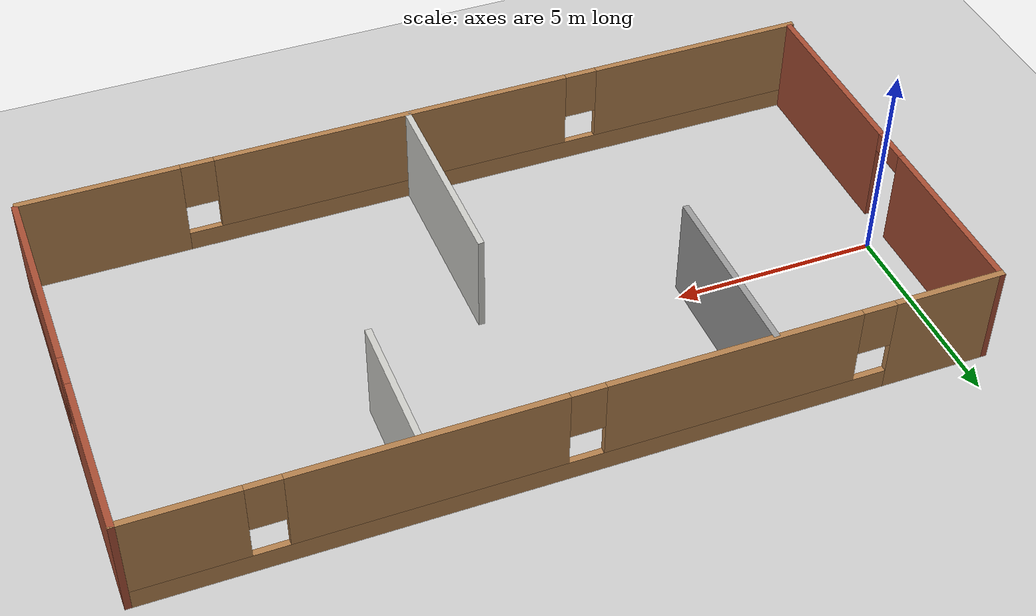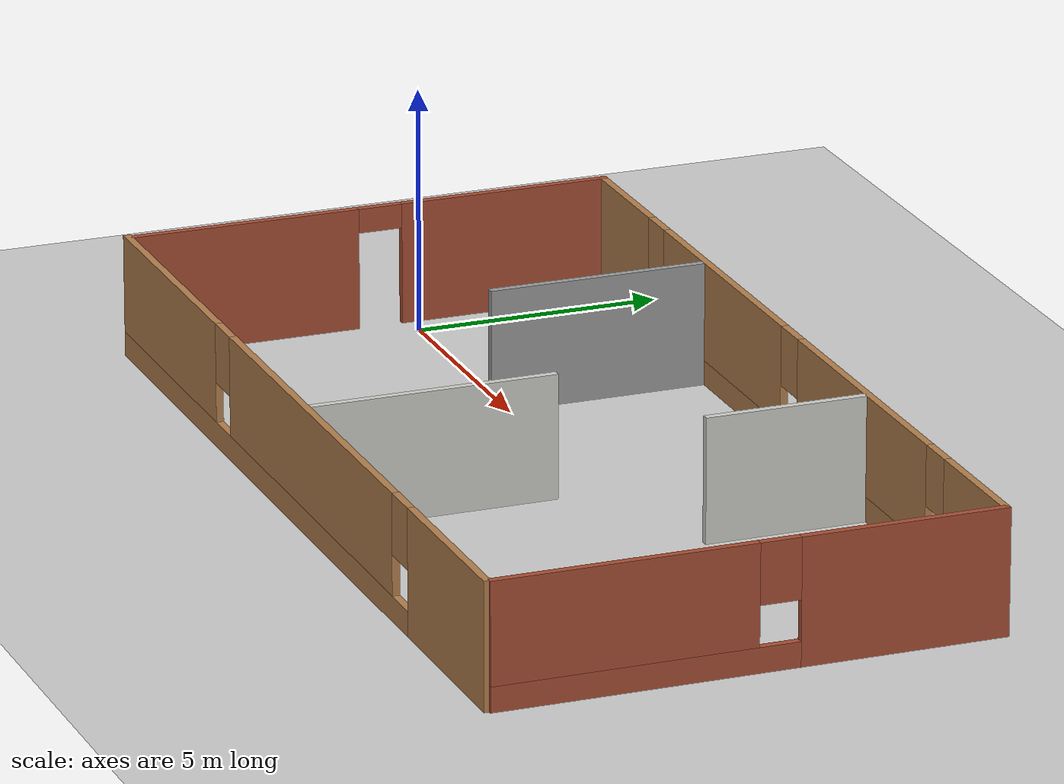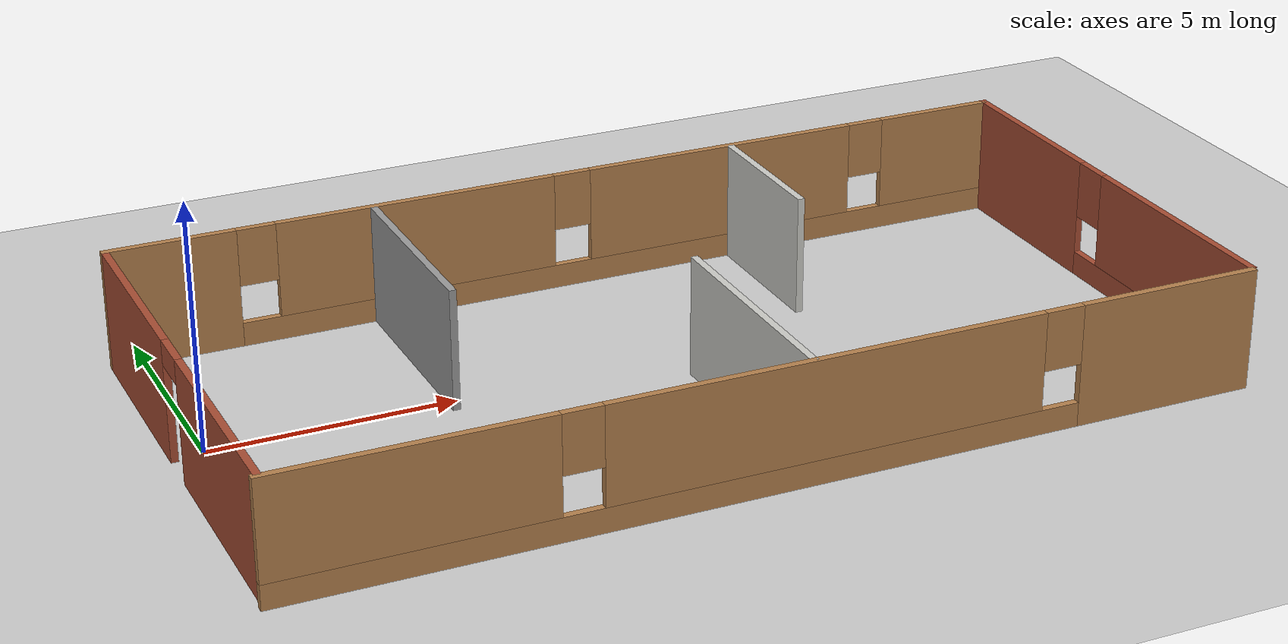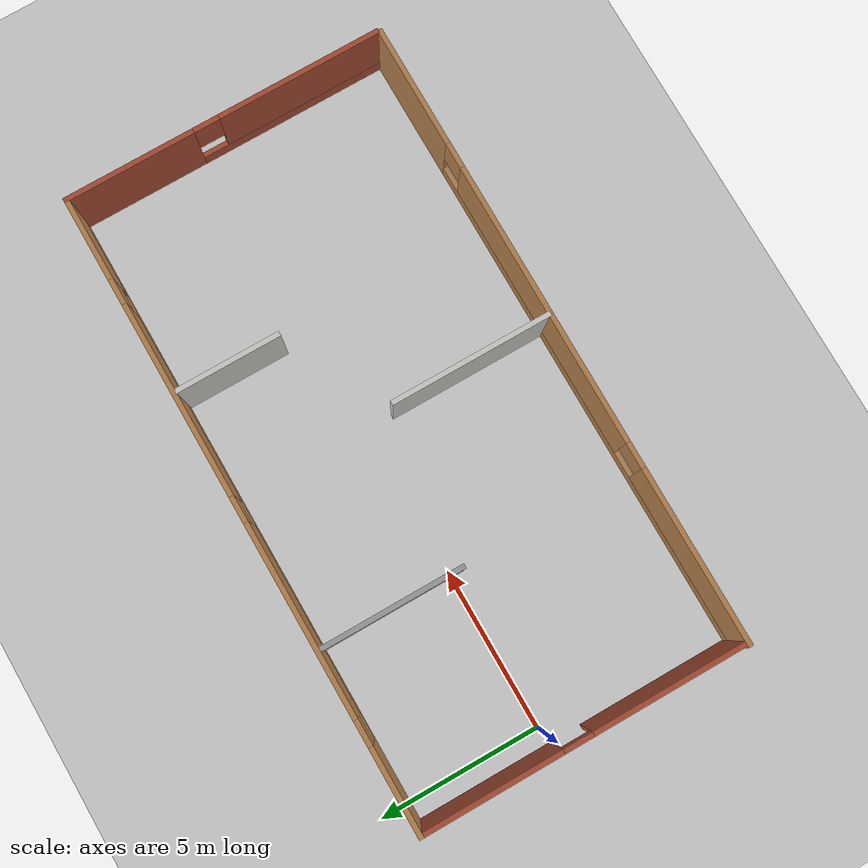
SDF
<sdf version="1.7">
 <world name="default">
  <light name="sun" type="directional">
   <pose>0 0 10 0 -0 0</pose>
   <diffuse>0.8 0.8 0.8 1</diffuse>
   <specular>0.2 0.2 0.2 1</specular>
   <attenuation>
    <range>1000</range>
    <constant>0.9</constant>
    <linear>0.01</linear>
    <quadratic>0.001</quadratic>
   </attenuation>
   <direction>-0.5 0.1 -0.9</direction>
   <spot><inner_angle>0</inner_angle><outer_angle>0</outer_angle><falloff>0</falloff></spot>
  </light>
  <model name="ground_plane">
   <static>1</static>
   <link name="link">
    <collision name="collision">
     <geometry><plane><normal>0 0 1</normal><size>100 100</size></plane></geometry>
     <surface>
      <contact><collide_bitmask>65535</collide_bitmask></contact>
      <friction><ode><mu>100</mu><mu2>50</mu2></ode></friction>
     </surface>
    </collision>
    <visual name="visual">
     <cast_shadows>0</cast_shadows>
     <geometry><plane><normal>0 0 1</normal><size>100 100</size></plane></geometry>
     <material>
      <script><uri>file://media/materials/scripts/gazebo.material</uri><name>Gazebo/Grey</name></script>
     </material>
    </visual>
   </link>
  </model>
  <gravity>0 0 -9.8</gravity>
  <magnetic_field>6e-06 2.3e-05 -4.2e-05</magnetic_field>
  <atmosphere type="adiabatic"/>
  <physics type="ode">
   <max_step_size>0.001</max_step_size>
   <real_time_factor>1</real_time_factor>
   <real_time_update_rate>1000</real_time_update_rate>
  </physics>
  <scene><ambient>0.4 0.4 0.4 1</ambient><background>0.7 0.7 0.7 1</background><shadows>1</shadows></scene>
  <spherical_coordinates>
   <surface_model>EARTH_WGS84</surface_model>
   <latitude_deg>0</latitude_deg>
   <longitude_deg>0</longitude_deg>
   <elevation>0</elevation>
   <heading_deg>0</heading_deg>
  </spherical_coordinates>
  <model name="home_1">
   <pose>9.17812 -0.840731 0 0 -0 0</pose>
   <link name="Wall_17">
    <pose>0.027956 4.97781 0 0 -0 0</pose>
    <visual name="Wall_17_Visual_0">
     <pose>-8.53674 0 1.25 0 -0 0</pose>
     <geometry><box><size>2.67652 0.15 2.5</size></box></geometry>
     <material>
      <script><uri>file://media/materials/scripts/gazebo.material</uri><name>Gazebo/Wood</name></script>
      <ambient>1 1 1 1</ambient>
     </material>
     <meta><layer>0</layer></meta>
    </visual>
    <collision name="Wall_17_Collision_0">
     <geometry><box><size>2.67652 0.15 2.5</size></box></geometry>
     <pose>-8.53674 0 1.25 0 -0 0</pose>
    </collision>
    <visual name="Wall_17_Visual_1">
     <pose>1.33826 0 0.25 0 -0 0</pose>
     <geometry><box><size>17.0735 0.15 0.5</size></box></geometry>
     <material>
      <script><uri>file://media/materials/scripts/gazebo.material</uri><name>Gazebo/Wood</name></script>
      <ambient>1 1 1 1</ambient>
     </material>
     <meta><layer>0</layer></meta>
    </visual>
    <collision name="Wall_17_Collision_1">
     <geometry><box><size>17.0735 0.15 0.5</size></box></geometry>
     <pose>1.33826 0 0.25 0 -0 0</pose>
    </collision>
    <visual name="Wall_17_Visual_2">
     <pose>-3.42848 0 1.5 0 -0 0</pose>
     <geometry><box><size>5.94 0.15 2</size></box></geometry>
     <material>
      <script><uri>file://media/materials/scripts/gazebo.material</uri><name>Gazebo/Wood</name></script>
      <ambient>1 1 1 1</ambient>
     </material>
     <meta><layer>0</layer></meta>
    </visual>
    <collision name="Wall_17_Collision_2">
     <geometry><box><size>5.94 0.15 2</size></box></geometry>
     <pose>-3.42848 0 1.5 0 -0 0</pose>
    </collision>
    <visual name="Wall_17_Visual_3">
     <pose>3.37152 0 1.5 0 -0 0</pose>
     <geometry><box><size>6.06 0.15 2</size></box></geometry>
     <material>
      <script><uri>file://media/materials/scripts/gazebo.material</uri><name>Gazebo/Wood</name></script>
      <ambient>1 1 1 1</ambient>
     </material>
     <meta><layer>0</layer></meta>
    </visual>
    <collision name="Wall_17_Collision_3">
     <geometry><box><size>6.06 0.15 2</size></box></geometry>
     <pose>3.37152 0 1.5 0 -0 0</pose>
    </collision>
    <visual name="Wall_17_Visual_4">
     <pose>8.53826 0 1.5 0 -0 0</pose>
     <geometry><box><size>2.67348 0.15 2</size></box></geometry>
     <material>
      <script><uri>file://media/materials/scripts/gazebo.material</uri><name>Gazebo/Wood</name></script>
      <ambient>1 1 1 1</ambient>
     </material>
     <meta><layer>0</layer></meta>
    </visual>
    <collision name="Wall_17_Collision_4">
     <geometry><box><size>2.67348 0.15 2</size></box></geometry>
     <pose>8.53826 0 1.5 0 -0 0</pose>
    </collision>
    <visual name="Wall_17_Visual_5">
     <pose>-6.79848 0 1.9 0 -0 0</pose>
     <geometry><box><size>0.8 0.15 1.2</size></box></geometry>
     <material>
      <script><uri>file://media/materials/scripts/gazebo.material</uri><name>Gazebo/Wood</name></script>
      <ambient>1 1 1 1</ambient>
     </material>
     <meta><layer>0</layer></meta>
    </visual>
    <collision name="Wall_17_Collision_5">
     <geometry><box><size>0.8 0.15 1.2</size></box></geometry>
     <pose>-6.79848 0 1.9 0 -0 0</pose>
    </collision>
    <visual name="Wall_17_Visual_6">
     <pose>-0.058481 0 1.9 0 -0 0</pose>
     <geometry><box><size>0.8 0.15 1.2</size></box></geometry>
     <material>
      <script><uri>file://media/materials/scripts/gazebo.material</uri><name>Gazebo/Wood</name></script>
      <ambient>1 1 1 1</ambient>
     </material>
     <meta><layer>0</layer></meta>
    </visual>
    <collision name="Wall_17_Collision_6">
     <geometry><box><size>0.8 0.15 1.2</size></box></geometry>
     <pose>-0.058481 0 1.9 0 -0 0</pose>
    </collision>
    <visual name="Wall_17_Visual_7">
     <pose>6.80152 0 1.9 0 -0 0</pose>
     <geometry><box><size>0.8 0.15 1.2</size></box></geometry>
     <material>
      <script><uri>file://media/materials/scripts/gazebo.material</uri><name>Gazebo/Wood</name></script>
      <ambient>1 1 1 1</ambient>
     </material>
     <meta><layer>0</layer></meta>
    </visual>
    <collision name="Wall_17_Collision_7">
     <geometry><box><size>0.8 0.15 1.2</size></box></geometry>
     <pose>6.80152 0 1.9 0 -0 0</pose>
    </collision>
   </link>
   <link name="Wall_19">
    <pose>-0.027957 -4.97781 0 0 -0 3.14159</pose>
    <visual name="Wall_19_Visual_0">
     <pose>-7.95164 0 1.25 0 -0 0</pose>
     <geometry><box><size>3.84672 0.15 2.5</size></box></geometry>
     <material>
      <script><uri>file://media/materials/scripts/gazebo.material</uri><name>Gazebo/Wood</name></script>
      <ambient>1 1 1 1</ambient>
     </material>
     <meta><layer>0</layer></meta>
    </visual>
    <collision name="Wall_19_Collision_0">
     <geometry><box><size>3.84672 0.15 2.5</size></box></geometry>
     <pose>-7.95164 0 1.25 0 -0 0</pose>
    </collision>
    <visual name="Wall_19_Visual_1">
     <pose>1.92336 0 0.25 0 -0 0</pose>
     <geometry><box><size>15.9033 0.15 0.5</size></box></geometry>
     <material>
      <script><uri>file://media/materials/scripts/gazebo.material</uri><name>Gazebo/Wood</name></script>
      <ambient>1 1 1 1</ambient>
     </material>
     <meta><layer>0</layer></meta>
    </visual>
    <collision name="Wall_19_Collision_1">
     <geometry><box><size>15.9033 0.15 0.5</size></box></geometry>
     <pose>1.92336 0 0.25 0 -0 0</pose>
    </collision>
    <visual name="Wall_19_Visual_2">
     <pose>-0.801026 0 1.5 0 -0 0</pose>
     <geometry><box><size>8.85451 0.15 2</size></box></geometry>
     <material>
      <script><uri>file://media/materials/scripts/gazebo.material</uri><name>Gazebo/Wood</name></script>
      <ambient>1 1 1 1</ambient>
     </material>
     <meta><layer>0</layer></meta>
    </visual>
    <collision name="Wall_19_Collision_2">
     <geometry><box><size>8.85451 0.15 2</size></box></geometry>
     <pose>-0.801026 0 1.5 0 -0 0</pose>
    </collision>
    <visual name="Wall_19_Visual_3">
     <pose>7.15062 0 1.5 0 -0 0</pose>
     <geometry><box><size>5.44877 0.15 2</size></box></geometry>
     <material>
      <script><uri>file://media/materials/scripts/gazebo.material</uri><name>Gazebo/Wood</name></script>
      <ambient>1 1 1 1</ambient>
     </material>
     <meta><layer>0</layer></meta>
    </visual>
    <collision name="Wall_19_Collision_3">
     <geometry><box><size>5.44877 0.15 2</size></box></geometry>
     <pose>7.15062 0 1.5 0 -0 0</pose>
    </collision>
    <visual name="Wall_19_Visual_4">
     <pose>-5.62828 0 1.9 0 -0 0</pose>
     <geometry><box><size>0.8 0.15 1.2</size></box></geometry>
     <material>
      <script><uri>file://media/materials/scripts/gazebo.material</uri><name>Gazebo/Wood</name></script>
      <ambient>1 1 1 1</ambient>
     </material>
     <meta><layer>0</layer></meta>
    </visual>
    <collision name="Wall_19_Collision_4">
     <geometry><box><size>0.8 0.15 1.2</size></box></geometry>
     <pose>-5.62828 0 1.9 0 -0 0</pose>
    </collision>
    <visual name="Wall_19_Visual_5">
     <pose>4.02623 0 1.9 0 -0 0</pose>
     <geometry><box><size>0.8 0.15 1.2</size></box></geometry>
     <material>
      <script><uri>file://media/materials/scripts/gazebo.material</uri><name>Gazebo/Wood</name></script>
      <ambient>1 1 1 1</ambient>
     </material>
     <meta><layer>0</layer></meta>
    </visual>
    <collision name="Wall_19_Collision_5">
     <geometry><box><size>0.8 0.15 1.2</size></box></geometry>
     <pose>4.02623 0 1.9 0 -0 0</pose>
    </collision>
   </link>
   <link name="Wall_24">
    <pose>9.82796 0.052813 0 0 -0 -1.5708</pose>
    <visual name="Wall_24_Visual_0">
     <pose>-2.96658 0 1.25 0 -0 0</pose>
     <geometry><box><size>4.06685 0.15 2.5</size></box></geometry>
     <material>
      <script><uri>file://media/materials/scripts/gazebo.material</uri><name>Gazebo/Bricks</name></script>
      <ambient>1 1 1 1</ambient>
     </material>
     <meta><layer>0</layer></meta>
    </visual>
    <collision name="Wall_24_Collision_0">
     <geometry><box><size>4.06685 0.15 2.5</size></box></geometry>
     <pose>-2.96658 0 1.25 0 -0 0</pose>
    </collision>
    <visual name="Wall_24_Visual_1">
     <pose>2.03342 0 0.25 0 -0 0</pose>
     <geometry><box><size>5.93315 0.15 0.5</size></box></geometry>
     <material>
      <script><uri>file://media/materials/scripts/gazebo.material</uri><name>Gazebo/Bricks</name></script>
      <ambient>1 1 1 1</ambient>
     </material>
     <meta><layer>0</layer></meta>
    </visual>
    <collision name="Wall_24_Collision_1">
     <geometry><box><size>5.93315 0.15 0.5</size></box></geometry>
     <pose>2.03342 0 0.25 0 -0 0</pose>
    </collision>
    <visual name="Wall_24_Visual_2">
     <pose>2.43342 0 1.5 0 -0 0</pose>
     <geometry><box><size>5.13315 0.15 2</size></box></geometry>
     <material>
      <script><uri>file://media/materials/scripts/gazebo.material</uri><name>Gazebo/Bricks</name></script>
      <ambient>1 1 1 1</ambient>
     </material>
     <meta><layer>0</layer></meta>
    </visual>
    <collision name="Wall_24_Collision_2">
     <geometry><box><size>5.13315 0.15 2</size></box></geometry>
     <pose>2.43342 0 1.5 0 -0 0</pose>
    </collision>
    <visual name="Wall_24_Visual_3">
     <pose>-0.533154 0 1.9 0 -0 0</pose>
     <geometry><box><size>0.8 0.15 1.2</size></box></geometry>
     <material>
      <script><uri>file://media/materials/scripts/gazebo.material</uri><name>Gazebo/Bricks</name></script>
      <ambient>1 1 1 1</ambient>
     </material>
     <meta><layer>0</layer></meta>
    </visual>
    <collision name="Wall_24_Collision_3">
     <geometry><box><size>0.8 0.15 1.2</size></box></geometry>
     <pose>-0.533154 0 1.9 0 -0 0</pose>
    </collision>
   </link>
   <link name="Wall_26">
    <pose>-9.77205 0.052813 0 0 -0 -1.5708</pose>
    <visual name="Wall_26_Visual_0">
     <pose>-2.80941 0 1.25 0 -0 0</pose>
     <geometry><box><size>4.38118 0.15 2.5</size></box></geometry>
     <material>
      <script><uri>file://media/materials/scripts/gazebo.material</uri><name>Gazebo/Bricks</name></script>
      <ambient>1 1 1 1</ambient>
     </material>
     <meta><layer>0</layer></meta>
    </visual>
    <collision name="Wall_26_Collision_0">
     <geometry><box><size>4.38118 0.15 2.5</size></box></geometry>
     <pose>-2.80941 0 1.25 0 -0 0</pose>
    </collision>
    <visual name="Wall_26_Visual_1">
     <pose>2.64059 0 1.25 0 -0 0</pose>
     <geometry><box><size>4.71882 0.15 2.5</size></box></geometry>
     <material>
      <script><uri>file://media/materials/scripts/gazebo.material</uri><name>Gazebo/Bricks</name></script>
      <ambient>1 1 1 1</ambient>
     </material>
     <meta><layer>0</layer></meta>
    </visual>
    <collision name="Wall_26_Collision_1">
     <geometry><box><size>4.71882 0.15 2.5</size></box></geometry>
     <pose>2.64059 0 1.25 0 -0 0</pose>
    </collision>
    <visual name="Wall_26_Visual_2">
     <pose>-0.168817 0 2.25 0 -0 0</pose>
     <geometry><box><size>0.9 0.15 0.5</size></box></geometry>
     <material>
      <script><uri>file://media/materials/scripts/gazebo.material</uri><name>Gazebo/Bricks</name></script>
      <ambient>1 1 1 1</ambient>
     </material>
     <meta><layer>0</layer></meta>
    </visual>
    <collision name="Wall_26_Collision_2">
     <geometry><box><size>0.9 0.15 0.5</size></box></geometry>
     <pose>-0.168817 0 2.25 0 -0 0</pose>
    </collision>
   </link>
   <link name="Wall_28">
    <collision name="Wall_28_Collision">
     <geometry><box><size>4.5 0.15 2.5</size></box></geometry>
     <pose>0 0 1.25 0 -0 0</pose>
    </collision>
    <visual name="Wall_28_Visual">
     <pose>0 0 1.25 0 -0 0</pose>
     <geometry><box><size>4.5 0.15 2.5</size></box></geometry>
     <material>
      <script><uri>file://media/materials/scripts/gazebo.material</uri><name>Gazebo/Grey</name></script>
      <ambient>1 1 1 1</ambient>
     </material>
     <meta><layer>0</layer></meta>
    </visual>
    <pose>-4.33052 2.73097 0 0 -0 -1.5708</pose>
   </link>
   <link name="Wall_30">
    <collision name="Wall_30_Collision">
     <geometry><box><size>5 0.15 2.5</size></box></geometry>
     <pose>0 0 1.25 0 -0 0</pose>
    </collision>
    <visual name="Wall_30_Visual">
     <pose>0 0 1.25 0 -0 0</pose>
     <geometry><box><size>5 0.15 2.5</size></box></geometry>
     <material>
      <script><uri>file://media/materials/scripts/gazebo.material</uri><name>Gazebo/CeilingTiled</name></script>
      <ambient>1 1 1 1</ambient>
     </material>
     <meta><layer>0</layer></meta>
    </visual>
    <pose>0.429475 -2.48903 0 0 -0 1.5708</pose>
   </link>
   <link name="Wall_32">
    <collision name="Wall_32_Collision">
     <geometry><box><size>3.25 0.15 2.5</size></box></geometry>
     <pose>0 0 1.25 0 -0 0</pose>
    </collision>
    <visual name="Wall_32_Visual">
     <pose>0 0 1.25 0 -0 0</pose>
     <geometry><box><size>3.25 0.15 2.5</size></box></geometry>
     <material>
      <script><uri>file://media/materials/scripts/gazebo.material</uri><name>Gazebo/CeilingTiled</name></script>
      <ambient>1 1 1 1</ambient>
     </material>
     <meta><layer>0</layer></meta>
    </visual>
    <pose>3.60948 3.31597 0 0 -0 -1.5708</pose>
   </link>
   <static>1</static>
  </model>
 </world>
</sdf>
